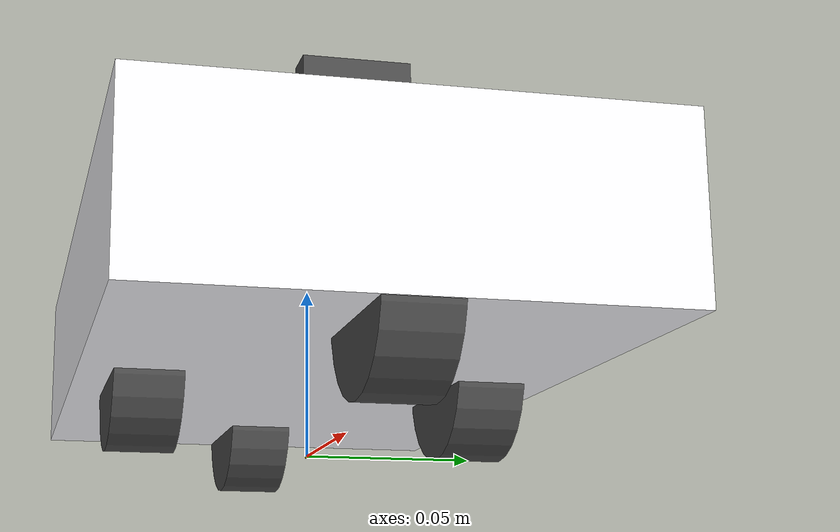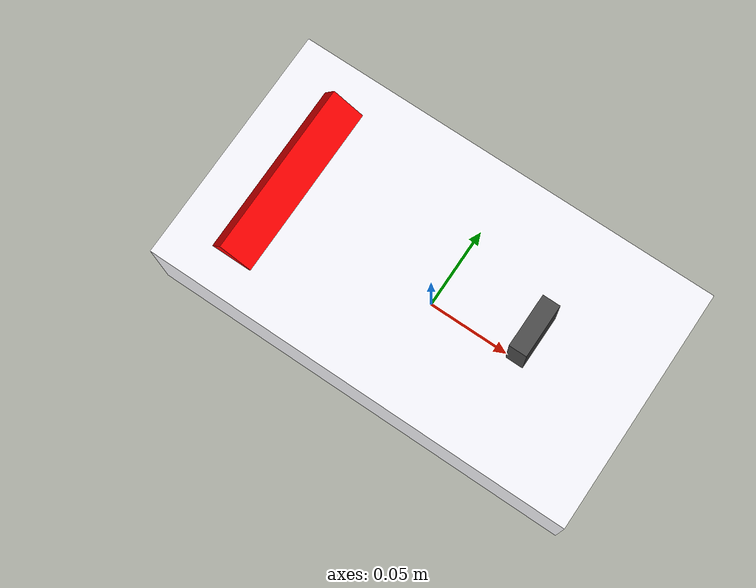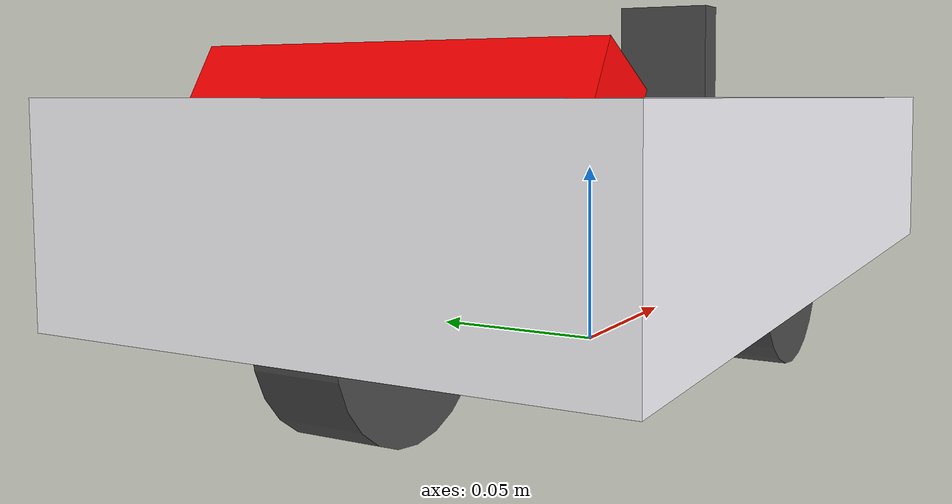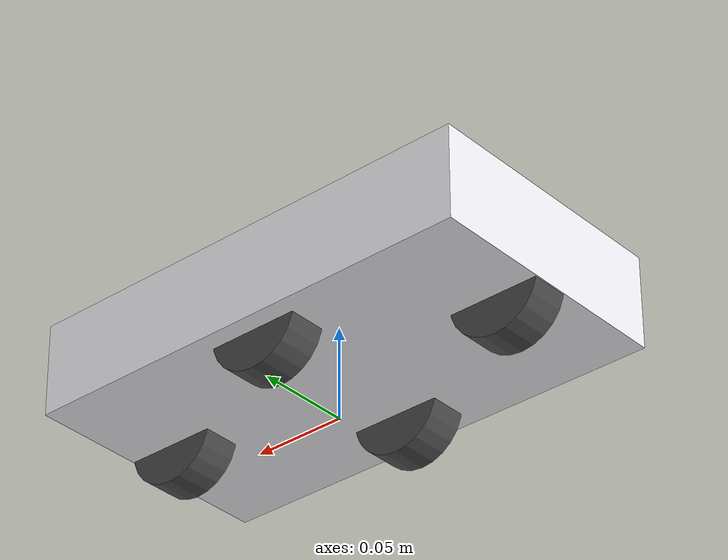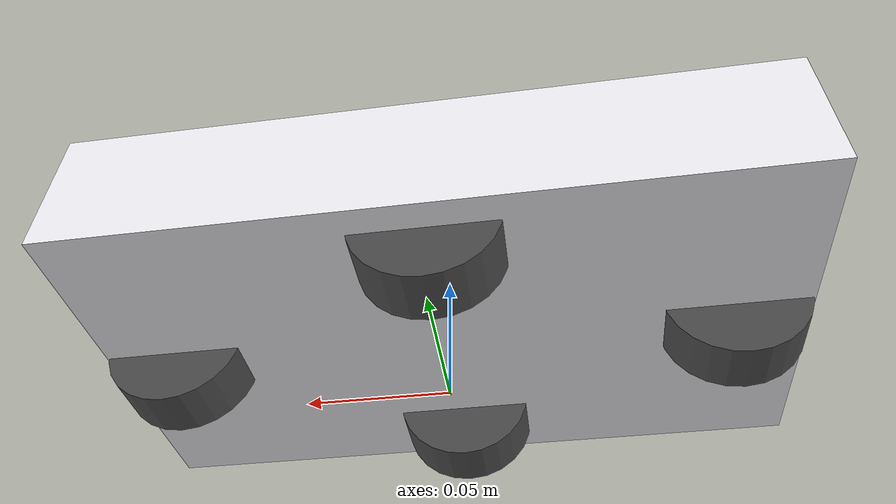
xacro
<?xml version="1.0"?>
<robot name="hhbot" xmlns:xacro="http://www.ros.org/wiki/xacro">

    <xacro:include filename="$(find hhbot_gazebo)/urdf/hhbot_diff_body.urdf.xacro" />
    <xacro:include filename="$(find hhbot_gazebo)/urdf/camera.xacro" />

    <xacro:property name="camera_offset_x" value="0.06" />
    <xacro:property name="camera_offset_y" value="0" />
    <!-- Body of hhobot -->
    <hhbot_body/>

    <!-- Camera of hhobot -->
    <joint name="camera_joint" type="fixed">
        <origin xyz="${camera_offset_x} ${camera_offset_y} ${base_link_height/2+0.015}" rpy="0 0 0" />
        <parent link="base_link"/>
        <child link="camera_link"/>
    </joint>

    <xacro:usb_camera prefix="camera"/>

</robot>

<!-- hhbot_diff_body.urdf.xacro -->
<robot name="hhbot_body" xmlns:xacro="http://www.ros.org/wiki/xacro">

    <!-- Defining the colors -->
    <material name="Black">
        <color rgba="0.29 0.29 0.29 1"/>
    </material>

    <material name="White">
        <color rgba="0.96 0.96 0.98 1"/>
    </material>

    <material name="Red">
        <color rgba="1 0 0 1"/>
    </material>

    <!-- PROPERTY LIST -->
    <!-- All units in m-kg-s-radians unit system -->
    <xacro:property name="H_PI" value="3.1415926535897931" />

    <!-- Main body length, width, height and mass -->
    <xacro:property name="base_mass"        value="1" />
    <xacro:property name="base_link_length" value="0.25" />
    <xacro:property name="base_link_width"  value="0.14" />
    <xacro:property name="base_link_height" value="0.05"/>

    <!-- Wheel radius, height, centre and mass -->
    <xacro:property name="wheel_mass"   value="0.1" />
    <xacro:property name="wheel_radius" value="0.025" />
    <xacro:property name="wheel_length" value="0.02" />
    <xacro:property name="wheel_centre" value="0.005" />

    <!-- tail length, width, height, y and radian -->
    <xacro:property name="tail_width"  value="0.02" />
    <xacro:property name="tail_length" value="0.1" />
    <xacro:property name="tail_height" value="0.02" />
    <xacro:property name="tail_x"      value="-0.09" />
    <xacro:property name="tail_radian" value="-1.0472" />

    <!-- Macro for inertia matrix -->
    <xacro:macro name="sphere_inertial_matrix" params="m r">
        <inertial>
            <mass value="${m}" />
            <inertia ixx="${2*m*r*r/5}" ixy="0" ixz="0"
                     iyy="${2*m*r*r/5}" iyz="0"
                     izz="${2*m*r*r/5}" />
        </inertial>
    </xacro:macro>

    <xacro:macro name="cylinder_inertial_matrix" params="m r h">
        <inertial>
            <mass value="${m}" />
            <inertia ixx="${m*(3*r*r+h*h)/12}" ixy = "0" ixz = "0"
                     iyy="${m*(3*r*r+h*h)/12}" iyz = "0"
                     izz="${m*r*r/2}" />
        </inertial>
    </xacro:macro>

    <xacro:macro name="box_inertial_matrix" params="m w h d">
        <inertial>
            <mass value="${m}" />
            <inertia ixx="${m*(h*h+d*d)/12}" ixy = "0" ixz = "0"
                     iyy="${m*(w*w+d*d)/12}" iyz = "0"
                     izz="${m*(w*w+h*h)/12}" />
        </inertial>
    </xacro:macro>

    <!-- Macro for wheel -->
    <xacro:macro name="wheel" params="fblr">
        <!-- fblr: left, right, front, back -->
        <link name="${fblr}_wheel_link">
            <visual>
                <origin xyz="0 0 0" rpy="0 0 0" />
                <geometry>
                    <cylinder length="${wheel_length}" radius="${wheel_radius}" />
                </geometry>
                <material name="Black" />
            </visual>
            <collision>
                <origin xyz="0 0 0" rpy="0 0 0" />
                <geometry>
                    <cylinder length="${wheel_length}" radius="${wheel_radius}" />
                </geometry>
            </collision>
            <cylinder_inertial_matrix m="${wheel_mass}"
                                      r="${wheel_radius}"
                                      h="${wheel_length}" />
        </link>

        <gazebo reference="${fblr}_wheel_link">
            <material>Gazebo/Black</material>
        </gazebo>

        <xacro:property name="sign_tp" value="continuous" />
        <xacro:property name="sign_fb" value="0" />
        <xacro:if value="${fblr == 'front'}">
	        <xacro:property name="sign_fb" value="1.0" />
                <xacro:property name="sign_tp" value="fixed" />
        </xacro:if>
        <xacro:if value="${fblr == 'back'}">
	        <xacro:property name="sign_fb" value="-1.0" />
                <xacro:property name="sign_tp" value="fixed" />
        </xacro:if>

        <xacro:property name="sign_lr" value="0" />
        <xacro:if value="${fblr == 'left'}">
	        <xacro:property name="sign_lr" value="1.0" />
        </xacro:if>
        <xacro:if value="${fblr == 'right'}">
	        <xacro:property name="sign_lr" value="-1.0" />
        </xacro:if>

        <joint name="${fblr}_wheel_joint" type="${sign_tp}">
            <axis xyz="0 0 1" rpy="0 0 0" />
            <parent link="base_link" />
            <child link="${fblr}_wheel_link" />
            <origin xyz="${sign_fb*(base_link_length/2-wheel_radius)}
                         ${sign_lr*(base_link_width/2-wheel_length)}
                         ${-sign_lr*sign_lr*0.0001+wheel_centre-wheel_radius}"
                    rpy="${-H_PI/2} 0 0" />
        </joint>
    </xacro:macro>

    <!-- Macro for tail -->
    <xacro:macro name="tail">
        <link name="tail_link">
            <visual>
                <geometry>
                    <box size="${tail_width} ${tail_length} ${tail_height}"/>
                </geometry>
                <material name="Red"/>
            </visual>
        </link>

        <joint name="tail_joint" type="fixed">
            <parent link="base_link"/>
            <child link="tail_link"/>
            <origin rpy="0 ${tail_radian} 0" xyz="${tail_x} 0 ${base_link_height/2-0.002}"/>
        </joint>
        <gazebo reference="tail_link">
            <material>Gazebo/Red</material>
        </gazebo>
    </xacro:macro>

    <!-- BASE-FOOTPRINT -->
    <!-- base_footprint is a fictitious link(frame) that is on the ground right below base_link origin -->
    <xacro:macro name="hhbot_body">
        <link name="base_footprint">
            <visual>
                <origin xyz="0 0 0" rpy="0 0 0" />
                <geometry>
                    <box size="0.001 0.001 0.001" />
                </geometry>
            </visual>
        </link>

        <joint name="base_footprint_joint" type="fixed">
            <origin xyz="0 0 ${base_link_height/2+wheel_radius-wheel_centre}"
                    rpy="0 0 0" />
            <parent link="base_footprint"/>
            <child link="base_link" />
        </joint>

        <!-- BASE-LINK -->
        <!--Actual body/chassis of the robot-->
        <link name="base_link">
            <visual>
                <origin xyz=" 0 0 0" rpy="0 0 0" />
                <geometry>
                    <box size="${base_link_length} ${base_link_width} ${base_link_height}" />
                </geometry>
                <material name="White" />
            </visual>

            <collision>
                <origin xyz="0 0 0" rpy="0 0 0" />
                <geometry>
                    <box size="${base_link_length} ${base_link_width} ${base_link_height}" />
                </geometry>
            </collision>

            <box_inertial_matrix  m="${base_mass}"
                                  w="${base_link_width}"
                                  h="${base_link_height}"
                                  d="${base_link_length}" />
        </link>
        <gazebo reference="base_link">
            <material>Gazebo/White</material>
        </gazebo>

        <!-- Wheel Definitions -->
        <wheel fblr="front" />
        <wheel fblr="back" />
        <wheel fblr="left" />
        <wheel fblr="right" />

        <!-- Tail Definitions -->
        <tail/>

        <!-- controller -->
        <gazebo>
            <plugin name="differential_drive_controller" filename="libgazebo_ros_diff_drive.so">
                <rosDebugLevel>Debug</rosDebugLevel>
                <publishWheelTF>true</publishWheelTF>
                <robotNamespace>/</robotNamespace>
                <publishTf>1</publishTf>
                <publishWheelJointState>true</publishWheelJointState>
                <alwaysOn>true</alwaysOn>
                <updateRate>100.0</updateRate>
                <legacyMode>true</legacyMode>
                <leftJoint>left_wheel_joint</leftJoint>
                <rightJoint>right_wheel_joint</rightJoint>
                <wheelSeparation>${base_link_width}</wheelSeparation>
                <wheelDiameter>${2*wheel_radius}</wheelDiameter>
                <broadcastTF>1</broadcastTF>
                <wheelTorque>30</wheelTorque>
                <wheelAcceleration>1.8</wheelAcceleration>
                <commandTopic>cmd_vel</commandTopic>
                <odometryFrame>odom</odometryFrame>
                <odometryTopic>odom</odometryTopic>
                <robotBaseFrame>base_footprint</robotBaseFrame>
            </plugin>
        </gazebo>
    </xacro:macro>

</robot>

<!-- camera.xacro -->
<robot xmlns:xacro="http://www.ros.org/wiki/xacro" name="camera">

    <xacro:macro name="usb_camera" params="prefix:=camera">
        <link name="${prefix}_link">
            <inertial>
                <mass value="0.1" />
                <origin xyz="0 0 0" />
                <inertia ixx="0.01" ixy="0.0" ixz="0.0"
                         iyy="0.01" iyz="0.0"
                         izz="0.01" />
            </inertial>

            <visual>
                <origin xyz=" 0 0 0 " rpy="0 0 0" />
                <geometry>
                    <box size="0.01 0.03 0.03" />
                </geometry>
                <material name="Black"/>
            </visual>

            <collision>
                <origin xyz="0.0 0.0 0.0" rpy="0 0 0" />
                <geometry>
                    <box size="0.01 0.03 0.03" />
                </geometry>
            </collision>
        </link>
        <gazebo reference="${prefix}_link">
            <material>Gazebo/Black</material>
        </gazebo>

        <gazebo reference="${prefix}_link">
            <sensor type="camera" name="camera_node">
                <update_rate>30.0</update_rate>
                <camera name="head">
                    <horizontal_fov>1.3962634</horizontal_fov>
                    <image>
                        <width>1280</width>
                        <height>720</height>
                        <format>R8G8B8</format>
                    </image>
                    <clip>
                        <near>0.02</near>
                        <far>300</far>
                    </clip>
                    <noise>
                        <type>gaussian</type>
                        <mean>0.0</mean>
                        <stddev>0.007</stddev>
                    </noise>
                </camera>
                <plugin name="gazebo_camera" filename="libgazebo_ros_camera.so">
                    <alwaysOn>true</alwaysOn>
                    <updateRate>0.0</updateRate>
                    <cameraName>/camera</cameraName>
                    <imageTopicName>image_raw</imageTopicName>
                    <cameraInfoTopicName>camera_info</cameraInfoTopicName>
                    <frameName>camera_link</frameName>
                    <hackBaseline>0.07</hackBaseline>
                    <distortionK1>0.0</distortionK1>
                    <distortionK2>0.0</distortionK2>
                    <distortionK3>0.0</distortionK3>
                    <distortionT1>0.0</distortionT1>
                    <distortionT2>0.0</distortionT2>
                </plugin>
            </sensor>
        </gazebo>

    </xacro:macro>
</robot>
